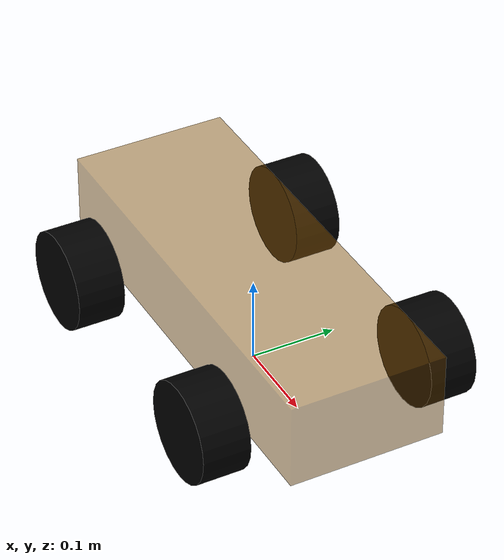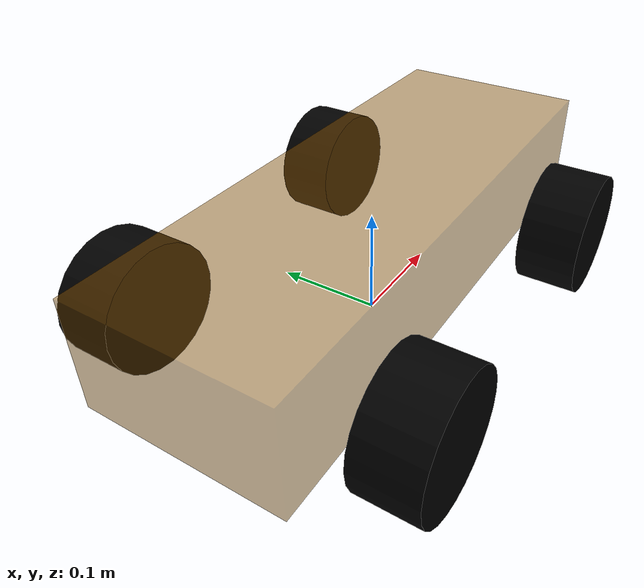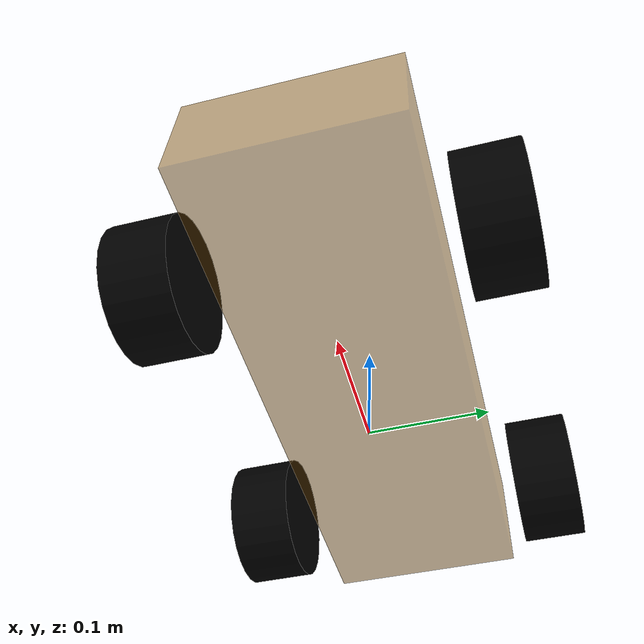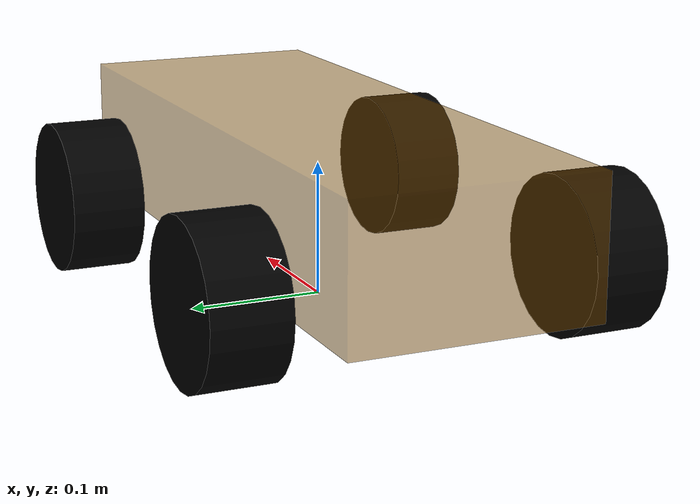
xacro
<!-- 根标签，必须声明 xmlns:xacro -->
<robot name="qingzhou_car" xmlns:xacro="http://www.ros.org/wiki/xacro">
  <!-- 封装变量、常量 -->
  <!-- PI 值设置精度需要高一些，否则后续车轮翻转量计算时，可能会出现肉眼不能察觉的车轮倾斜，从而导致模型抖动 -->
  <xacro:property name="PI" value="3.1415926535897932384"/>
  <!-- 宏:黑色设置 -->
  <material name="black">
      <color rgba="0.0 0.0 0.0 1.0" />
  </material>
  <!-- 底盘属性 -->
  <xacro:property name="base_footprint_radius" value="0.001" /> <!-- base_footprint 半径  -->
  <xacro:property name="base_link_x" value="0.5" /> <!-- base_link 长 -->
  <xacro:property name="base_link_y" value="0.18" /> <!-- base_link 宽 -->
  <xacro:property name="base_link_z" value="0.1" /> <!-- base_link 高 -->
  <xacro:property name="earth_space" value="0.04" /> <!-- 离地间距 -->

  <!-- 底盘 -->
  <link name="base_footprint">
    <visual>
      <geometry>
        <sphere radius="${base_footprint_radius}" />
      </geometry>
      <origin xyz="0 0 0" rpy="0 0 0" />
    </visual>
  </link>

    <joint name="base_footprint2base_link" type="fixed">
      <parent link="base_footprint" />
      <child link="base_link" />
      <origin xyz="0 0 0" rpy="0 0 0" />
    </joint>

  <link name="base_link">
    <visual>
      <geometry>
        <box size="${base_link_x} ${base_link_y} ${base_link_z}" />
      </geometry>
      <origin xyz="0 0 ${earth_space+base_link_z/2}" rpy="0 0 0" />
      <material name="yellow">
        <color rgba="0.5 0.3 0.0 0.5" />
      </material>
    </visual>
   </link>

 <!-- 驱动轮 -->
  <!-- 驱动轮属性 -->
  <xacro:property name="wheel_radius" value="0.0575" /><!-- 半径 -->
  <xacro:property name="wheel_length" value="0.055" /><!-- 宽度 -->

  <!-- 驱动轮宏实现 -->
  <xacro:macro name="add_wheels" params="name flag">
    <link name="${name}_wheel">
      <visual>
        <geometry>
          <cylinder radius="${wheel_radius}" length="${wheel_length}" />
        </geometry>
        <origin xyz="0.0 0.0 0.0" rpy="${PI / 2} 0.0 0.0" />
        <material name="black" />
      </visual>
    </link>

    <joint name="${name}_wheel2base_link" type="continuous">
      <parent link="base_link" />
      <child link="${name}_wheel" />
      <origin xyz="-0.155 ${flag*(0.19-0.055)} ${wheel_radius}" rpy="0 0 0" />
      <axis xyz="0 1 0" />
    </joint>

  </xacro:macro>
  <xacro:add_wheels name="left" flag="1" />
  <xacro:add_wheels name="right" flag="-1" />

  <!-- 驱动轮宏实现 -->
  <xacro:macro name="add_wheels" params="name flag">
    <link name="${name}_wheel">
      <visual>
        <geometry>
          <cylinder radius="${wheel_radius}" length="${wheel_length}" />
        </geometry>
        <origin xyz="0.0 0.0 0.0" rpy="${PI / 2} 0.0 0.0" />
        <material name="black" />
      </visual>
    </link>

    <joint name="${name}_wheel2base_link" type="continuous">
      <parent link="base_link" />
      <child link="${name}_wheel" />
      <origin xyz="0.14 ${flag*(0.19-0.055)} ${wheel_radius}" rpy="0 0 0" />
      <axis xyz="0 0 1" />
    </joint>

  </xacro:macro>
  <xacro:add_wheels name="left_front" flag="1" />
  <xacro:add_wheels name="right_front" flag="-1" />

</robot>
